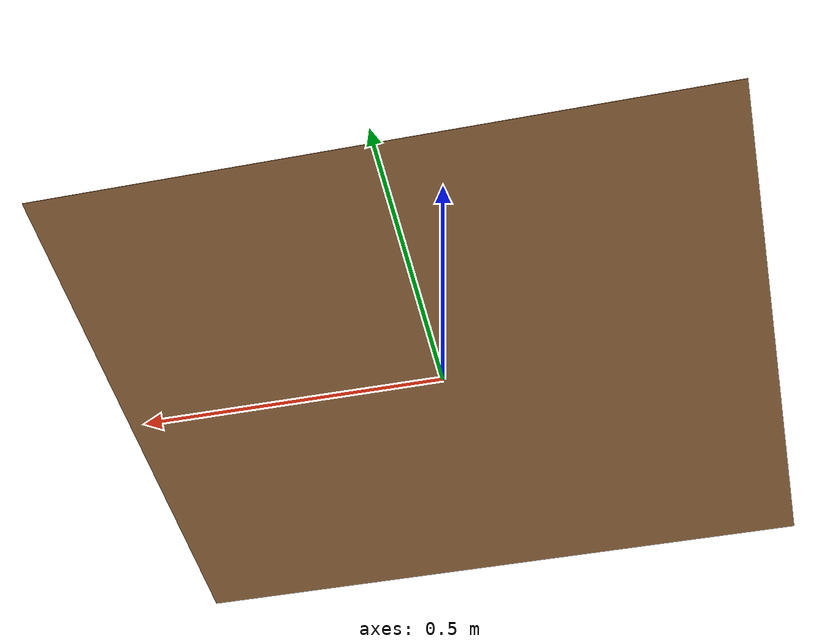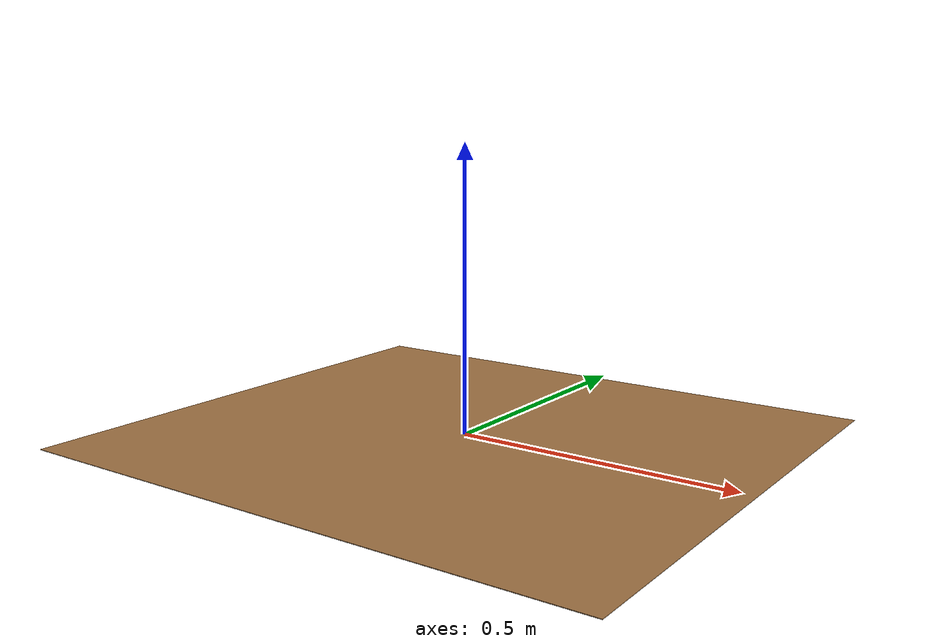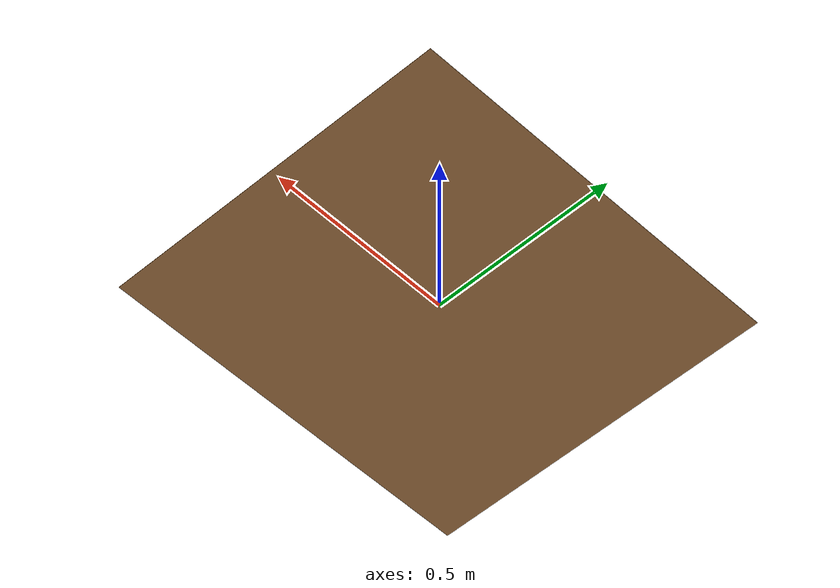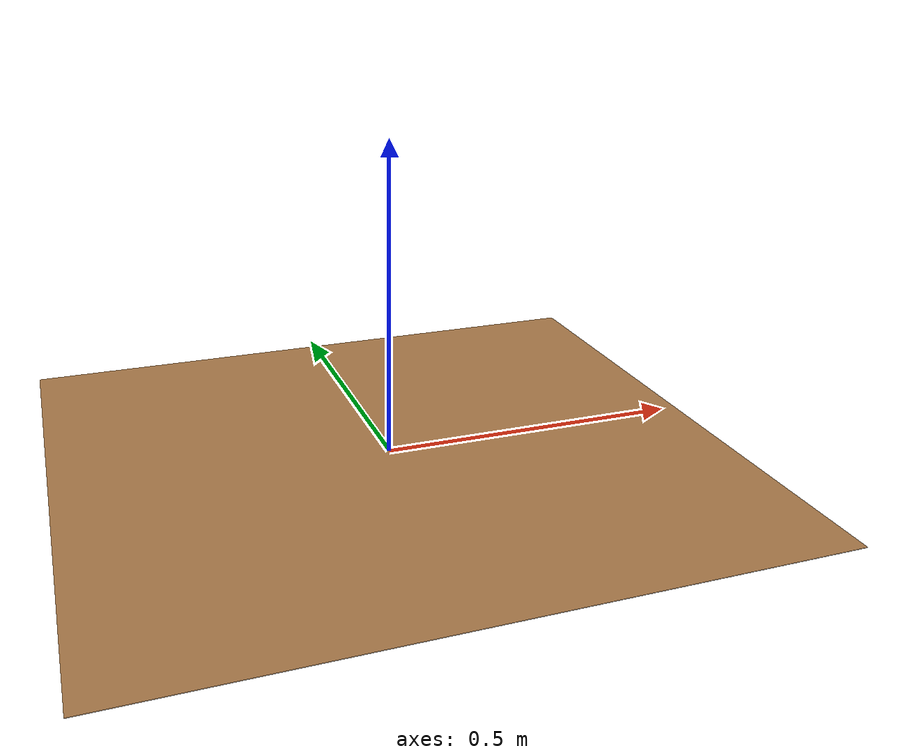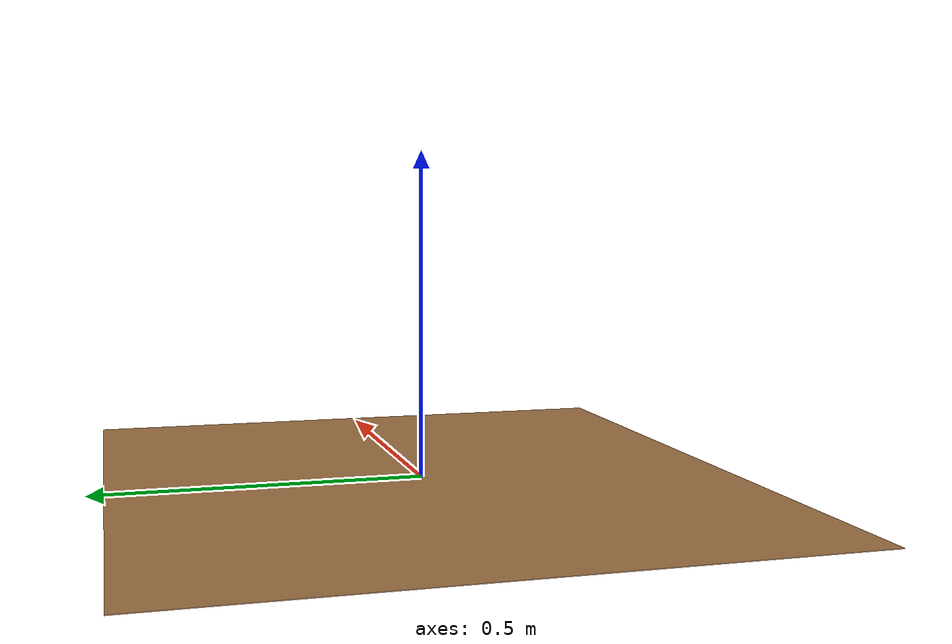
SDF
<?xml version="1.0"?>
<sdf version="1.6">
  <model name="thin_surface">
    <static>false</static> <!-- Set to false to allow it to be affected by gravity -->

    <!-- Link definition -->
    <link name="surface">

      <!-- Collision -->
      <collision name="collision">
        <geometry>
          <box>
            <size>0.5 0.5 0.001</size> <!-- Width, depth, height of base -->
          </box>
        </geometry>
        <surface>
          <friction>
            <ode>
              <mu>1.0</mu> <!-- High friction coefficient -->
              <mu2>1.0</mu2>
            </ode>
          </friction>

        </surface>
      </collision>

      <!-- Visual -->
      <visual name="visual">
        <geometry>
          <box>
            <size>1.05 0.95 0.001</size> <!-- Width, depth, height of base -->
          </box>
        </geometry>
        <material>
          <script>
            <uri>file://media/materials/scripts/gazebo.material</uri> <!-- Adjust path as needed -->
            <name>Gazebo/Wood</name> <!-- Use an existing material name -->
          </script>
        </material>
      </visual>

      <!-- Inertial properties -->
      <inertial>
        <mass>1.01</mass>
        <inertia>
          <ixx>0.01</ixx>
          <iyy>0.01</iyy>
          <izz>0.01</izz>
          <ixy>0</ixy>
          <ixz>0</ixz>
          <iyz>0</iyz>
        </inertia>
      </inertial>
    </link>
  </model>
</sdf>
